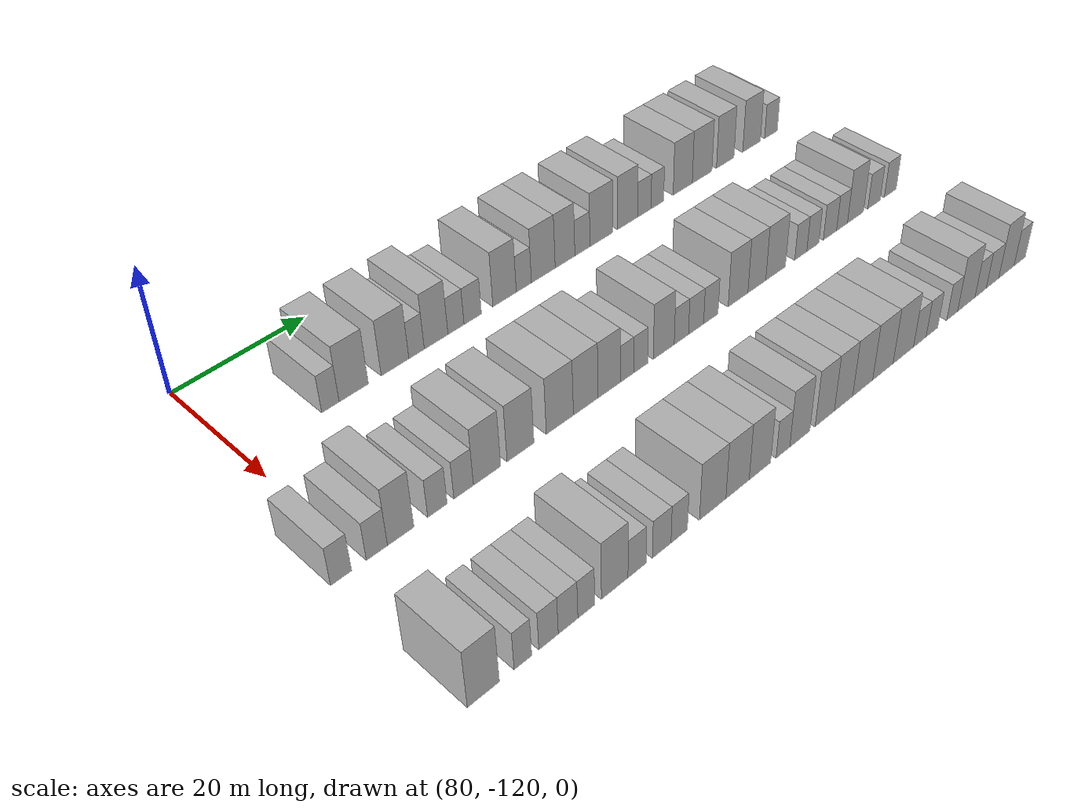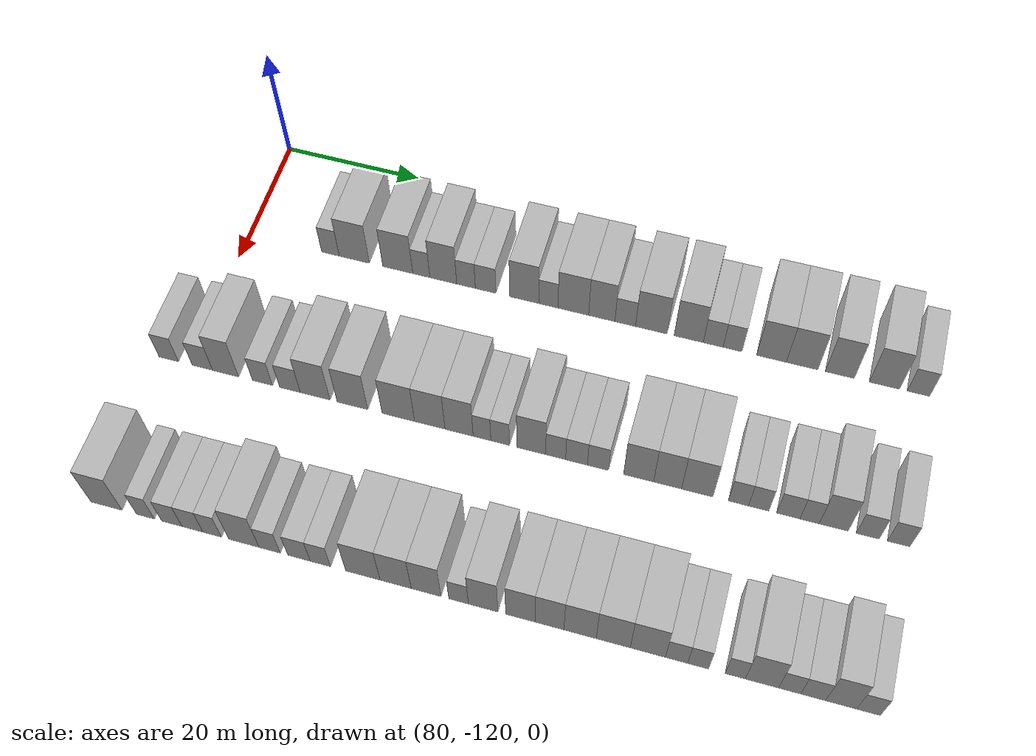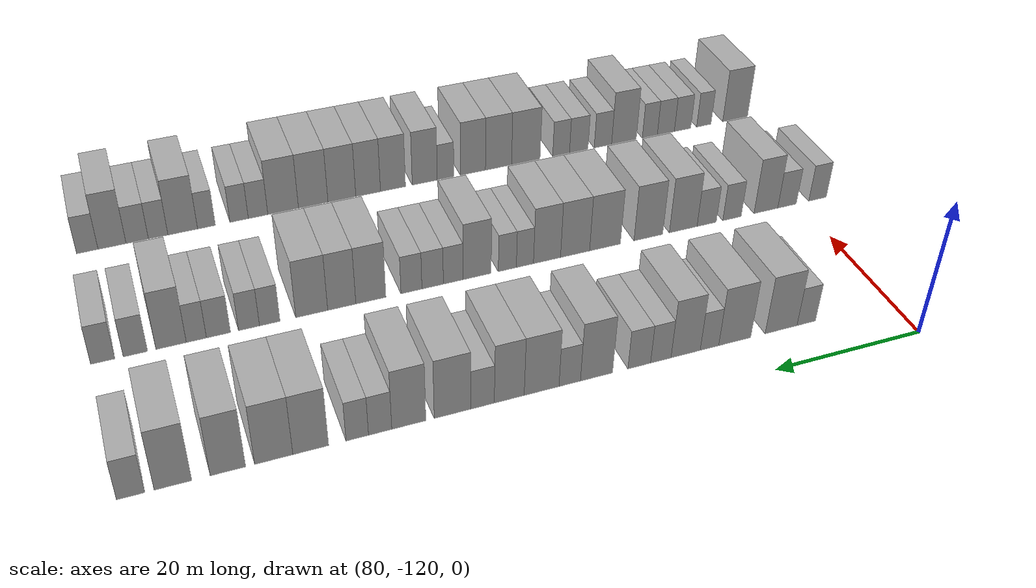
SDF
<sdf version="1.6">
 <world name="default">
  <model name="building_634">
   <static>1</static>
   <pose>91.0000 -107.7955 0 0.000000 0.000000 0.000000</pose>
   <link name="link">
    <pose>0 0 3.00 0 0 0</pose>
    <collision name="collision"><geometry><box><size>10.0000 2.6224 6.0000</size></box></geometry></collision>
    <visual name="visual">
     <cast_shadows>0</cast_shadows>
     <geometry><box><size>10.0000 2.6224 6.0000</size></box></geometry>
     <material>
      <script>
       <uri>model://HANNAS_wall/materials/scripts</uri>
       <uri>model://HANNAS_wall/materials/textures</uri>
       <name>vrc/HANNAS_wall</name>
      </script>
     </material>
    </visual>
   </link>
  </model>
  <model name="building_635">
   <static>1</static>
   <pose>91.0000 -104.2464 0 0.000000 0.000000 0.000000</pose>
   <link name="link">
    <pose>0 0 4.50 0 0 0</pose>
    <collision name="collision"><geometry><box><size>10.0000 4.4760 9.0000</size></box></geometry></collision>
    <visual name="visual">
     <cast_shadows>0</cast_shadows>
     <geometry><box><size>10.0000 4.4760 9.0000</size></box></geometry>
     <material>
      <script>
       <uri>model://HANNAS_wall/materials/scripts</uri>
       <uri>model://HANNAS_wall/materials/textures</uri>
       <name>vrc/HANNAS_wall</name>
      </script>
     </material>
    </visual>
   </link>
  </model>
  <model name="building_636">
   <static>1</static>
   <pose>91.0000 -97.8032 0 0.000000 0.000000 0.000000</pose>
   <link name="link">
    <pose>0 0 4.50 0 0 0</pose>
    <collision name="collision"><geometry><box><size>10.0000 4.4105 9.0000</size></box></geometry></collision>
    <visual name="visual">
     <cast_shadows>0</cast_shadows>
     <geometry><box><size>10.0000 4.4105 9.0000</size></box></geometry>
     <material>
      <script>
       <uri>model://HANNAS_wall/materials/scripts</uri>
       <uri>model://HANNAS_wall/materials/textures</uri>
       <name>vrc/HANNAS_wall</name>
      </script>
     </material>
    </visual>
   </link>
  </model>
  <model name="building_637">
   <static>1</static>
   <pose>91.0000 -94.3453 0 0.000000 0.000000 0.000000</pose>
   <link name="link">
    <pose>0 0 3.00 0 0 0</pose>
    <collision name="collision"><geometry><box><size>10.0000 2.5053 6.0000</size></box></geometry></collision>
    <visual name="visual">
     <cast_shadows>0</cast_shadows>
     <geometry><box><size>10.0000 2.5053 6.0000</size></box></geometry>
     <material>
      <script>
       <uri>model://HANNAS_wall/materials/scripts</uri>
       <uri>model://HANNAS_wall/materials/textures</uri>
       <name>vrc/HANNAS_wall</name>
      </script>
     </material>
    </visual>
   </link>
  </model>
  <model name="building_638">
   <static>1</static>
   <pose>91.0000 -91.1298 0 0.000000 0.000000 0.000000</pose>
   <link name="link">
    <pose>0 0 4.50 0 0 0</pose>
    <collision name="collision"><geometry><box><size>10.0000 3.9256 9.0000</size></box></geometry></collision>
    <visual name="visual">
     <cast_shadows>0</cast_shadows>
     <geometry><box><size>10.0000 3.9256 9.0000</size></box></geometry>
     <material>
      <script>
       <uri>model://HANNAS_wall/materials/scripts</uri>
       <uri>model://HANNAS_wall/materials/textures</uri>
       <name>vrc/HANNAS_wall</name>
      </script>
     </material>
    </visual>
   </link>
  </model>
  <model name="building_639">
   <static>1</static>
   <pose>91.0000 -87.8131 0 0.000000 0.000000 0.000000</pose>
   <link name="link">
    <pose>0 0 3.00 0 0 0</pose>
    <collision name="collision"><geometry><box><size>10.0000 2.7079 6.0000</size></box></geometry></collision>
    <visual name="visual">
     <cast_shadows>0</cast_shadows>
     <geometry><box><size>10.0000 2.7079 6.0000</size></box></geometry>
     <material>
      <script>
       <uri>model://HANNAS_wall/materials/scripts</uri>
       <uri>model://HANNAS_wall/materials/textures</uri>
       <name>vrc/HANNAS_wall</name>
      </script>
     </material>
    </visual>
   </link>
  </model>
  <model name="building_640">
   <static>1</static>
   <pose>91.0000 -84.9691 0 0.000000 0.000000 0.000000</pose>
   <link name="link">
    <pose>0 0 3.00 0 0 0</pose>
    <collision name="collision"><geometry><box><size>10.0000 2.9801 6.0000</size></box></geometry></collision>
    <visual name="visual">
     <cast_shadows>0</cast_shadows>
     <geometry><box><size>10.0000 2.9801 6.0000</size></box></geometry>
     <material>
      <script>
       <uri>model://HANNAS_wall/materials/scripts</uri>
       <uri>model://HANNAS_wall/materials/textures</uri>
       <name>vrc/HANNAS_wall</name>
      </script>
     </material>
    </visual>
   </link>
  </model>
  <model name="building_641">
   <static>1</static>
   <pose>91.0000 -79.4060 0 0.000000 0.000000 0.000000</pose>
   <link name="link">
    <pose>0 0 4.50 0 0 0</pose>
    <collision name="collision"><geometry><box><size>10.0000 4.1459 9.0000</size></box></geometry></collision>
    <visual name="visual">
     <cast_shadows>0</cast_shadows>
     <geometry><box><size>10.0000 4.1459 9.0000</size></box></geometry>
     <material>
      <script>
       <uri>model://HANNAS_wall/materials/scripts</uri>
       <uri>model://HANNAS_wall/materials/textures</uri>
       <name>vrc/HANNAS_wall</name>
      </script>
     </material>
    </visual>
   </link>
  </model>
  <model name="building_642">
   <static>1</static>
   <pose>91.0000 -75.9673 0 0.000000 0.000000 0.000000</pose>
   <link name="link">
    <pose>0 0 3.00 0 0 0</pose>
    <collision name="collision"><geometry><box><size>10.0000 2.7315 6.0000</size></box></geometry></collision>
    <visual name="visual">
     <cast_shadows>0</cast_shadows>
     <geometry><box><size>10.0000 2.7315 6.0000</size></box></geometry>
     <material>
      <script>
       <uri>model://HANNAS_wall/materials/scripts</uri>
       <uri>model://HANNAS_wall/materials/textures</uri>
       <name>vrc/HANNAS_wall</name>
      </script>
     </material>
    </visual>
   </link>
  </model>
  <model name="building_643">
   <static>1</static>
   <pose>91.0000 -72.4109 0 0.000000 0.000000 0.000000</pose>
   <link name="link">
    <pose>0 0 4.50 0 0 0</pose>
    <collision name="collision"><geometry><box><size>10.0000 4.3813 9.0000</size></box></geometry></collision>
    <visual name="visual">
     <cast_shadows>0</cast_shadows>
     <geometry><box><size>10.0000 4.3813 9.0000</size></box></geometry>
     <material>
      <script>
       <uri>model://HANNAS_wall/materials/scripts</uri>
       <uri>model://HANNAS_wall/materials/textures</uri>
       <name>vrc/HANNAS_wall</name>
      </script>
     </material>
    </visual>
   </link>
  </model>
  <model name="building_644">
   <static>1</static>
   <pose>91.0000 -68.3657 0 0.000000 0.000000 0.000000</pose>
   <link name="link">
    <pose>0 0 4.50 0 0 0</pose>
    <collision name="collision"><geometry><box><size>10.0000 3.7092 9.0000</size></box></geometry></collision>
    <visual name="visual">
     <cast_shadows>0</cast_shadows>
     <geometry><box><size>10.0000 3.7092 9.0000</size></box></geometry>
     <material>
      <script>
       <uri>model://HANNAS_wall/materials/scripts</uri>
       <uri>model://HANNAS_wall/materials/textures</uri>
       <name>vrc/HANNAS_wall</name>
      </script>
     </material>
    </visual>
   </link>
  </model>
  <model name="building_645">
   <static>1</static>
   <pose>91.0000 -65.0615 0 0.000000 0.000000 0.000000</pose>
   <link name="link">
    <pose>0 0 3.00 0 0 0</pose>
    <collision name="collision"><geometry><box><size>10.0000 2.8991 6.0000</size></box></geometry></collision>
    <visual name="visual">
     <cast_shadows>0</cast_shadows>
     <geometry><box><size>10.0000 2.8991 6.0000</size></box></geometry>
     <material>
      <script>
       <uri>model://HANNAS_wall/materials/scripts</uri>
       <uri>model://HANNAS_wall/materials/textures</uri>
       <name>vrc/HANNAS_wall</name>
      </script>
     </material>
    </visual>
   </link>
  </model>
  <model name="building_646">
   <static>1</static>
   <pose>91.0000 -61.4081 0 0.000000 0.000000 0.000000</pose>
   <link name="link">
    <pose>0 0 4.50 0 0 0</pose>
    <collision name="collision"><geometry><box><size>10.0000 4.4078 9.0000</size></box></geometry></collision>
    <visual name="visual">
     <cast_shadows>0</cast_shadows>
     <geometry><box><size>10.0000 4.4078 9.0000</size></box></geometry>
     <material>
      <script>
       <uri>model://HANNAS_wall/materials/scripts</uri>
       <uri>model://HANNAS_wall/materials/textures</uri>
       <name>vrc/HANNAS_wall</name>
      </script>
     </material>
    </visual>
   </link>
  </model>
  <model name="building_647">
   <static>1</static>
   <pose>91.0000 -56.1828 0 0.000000 0.000000 0.000000</pose>
   <link name="link">
    <pose>0 0 4.50 0 0 0</pose>
    <collision name="collision"><geometry><box><size>10.0000 4.0427 9.0000</size></box></geometry></collision>
    <visual name="visual">
     <cast_shadows>0</cast_shadows>
     <geometry><box><size>10.0000 4.0427 9.0000</size></box></geometry>
     <material>
      <script>
       <uri>model://HANNAS_wall/materials/scripts</uri>
       <uri>model://HANNAS_wall/materials/textures</uri>
       <name>vrc/HANNAS_wall</name>
      </script>
     </material>
    </visual>
   </link>
  </model>
  <model name="building_648">
   <static>1</static>
   <pose>91.0000 -52.7962 0 0.000000 0.000000 0.000000</pose>
   <link name="link">
    <pose>0 0 3.00 0 0 0</pose>
    <collision name="collision"><geometry><box><size>10.0000 2.7305 6.0000</size></box></geometry></collision>
    <visual name="visual">
     <cast_shadows>0</cast_shadows>
     <geometry><box><size>10.0000 2.7305 6.0000</size></box></geometry>
     <material>
      <script>
       <uri>model://HANNAS_wall/materials/scripts</uri>
       <uri>model://HANNAS_wall/materials/textures</uri>
       <name>vrc/HANNAS_wall</name>
      </script>
     </material>
    </visual>
   </link>
  </model>
  <model name="building_649">
   <static>1</static>
   <pose>91.0000 -50.1236 0 0.000000 0.000000 0.000000</pose>
   <link name="link">
    <pose>0 0 3.00 0 0 0</pose>
    <collision name="collision"><geometry><box><size>10.0000 2.6149 6.0000</size></box></geometry></collision>
    <visual name="visual">
     <cast_shadows>0</cast_shadows>
     <geometry><box><size>10.0000 2.6149 6.0000</size></box></geometry>
     <material>
      <script>
       <uri>model://HANNAS_wall/materials/scripts</uri>
       <uri>model://HANNAS_wall/materials/textures</uri>
       <name>vrc/HANNAS_wall</name>
      </script>
     </material>
    </visual>
   </link>
  </model>
  <model name="building_650">
   <static>1</static>
   <pose>91.0000 -44.7787 0 0.000000 0.000000 0.000000</pose>
   <link name="link">
    <pose>0 0 4.50 0 0 0</pose>
    <collision name="collision"><geometry><box><size>10.0000 4.0748 9.0000</size></box></geometry></collision>
    <visual name="visual">
     <cast_shadows>0</cast_shadows>
     <geometry><box><size>10.0000 4.0748 9.0000</size></box></geometry>
     <material>
      <script>
       <uri>model://HANNAS_wall/materials/scripts</uri>
       <uri>model://HANNAS_wall/materials/textures</uri>
       <name>vrc/HANNAS_wall</name>
      </script>
     </material>
    </visual>
   </link>
  </model>
  <model name="building_651">
   <static>1</static>
   <pose>91.0000 -40.5996 0 0.000000 0.000000 0.000000</pose>
   <link name="link">
    <pose>0 0 4.50 0 0 0</pose>
    <collision name="collision"><geometry><box><size>10.0000 4.2834 9.0000</size></box></geometry></collision>
    <visual name="visual">
     <cast_shadows>0</cast_shadows>
     <geometry><box><size>10.0000 4.2834 9.0000</size></box></geometry>
     <material>
      <script>
       <uri>model://HANNAS_wall/materials/scripts</uri>
       <uri>model://HANNAS_wall/materials/textures</uri>
       <name>vrc/HANNAS_wall</name>
      </script>
     </material>
    </visual>
   </link>
  </model>
  <model name="building_652">
   <static>1</static>
   <pose>91.0000 -35.5072 0 0.000000 0.000000 0.000000</pose>
   <link name="link">
    <pose>0 0 4.50 0 0 0</pose>
    <collision name="collision"><geometry><box><size>10.0000 3.9012 9.0000</size></box></geometry></collision>
    <visual name="visual">
     <cast_shadows>0</cast_shadows>
     <geometry><box><size>10.0000 3.9012 9.0000</size></box></geometry>
     <material>
      <script>
       <uri>model://HANNAS_wall/materials/scripts</uri>
       <uri>model://HANNAS_wall/materials/textures</uri>
       <name>vrc/HANNAS_wall</name>
      </script>
     </material>
    </visual>
   </link>
  </model>
  <model name="building_653">
   <static>1</static>
   <pose>91.0000 -29.5330 0 0.000000 0.000000 0.000000</pose>
   <link name="link">
    <pose>0 0 4.50 0 0 0</pose>
    <collision name="collision"><geometry><box><size>10.0000 4.0472 9.0000</size></box></geometry></collision>
    <visual name="visual">
     <cast_shadows>0</cast_shadows>
     <geometry><box><size>10.0000 4.0472 9.0000</size></box></geometry>
     <material>
      <script>
       <uri>model://HANNAS_wall/materials/scripts</uri>
       <uri>model://HANNAS_wall/materials/textures</uri>
       <name>vrc/HANNAS_wall</name>
      </script>
     </material>
    </visual>
   </link>
  </model>
  <model name="building_654">
   <static>1</static>
   <pose>91.0000 -25.0116 0 0.000000 0.000000 0.000000</pose>
   <link name="link">
    <pose>0 0 3.00 0 0 0</pose>
    <collision name="collision"><geometry><box><size>10.0000 2.9956 6.0000</size></box></geometry></collision>
    <visual name="visual">
     <cast_shadows>0</cast_shadows>
     <geometry><box><size>10.0000 2.9956 6.0000</size></box></geometry>
     <material>
      <script>
       <uri>model://HANNAS_wall/materials/scripts</uri>
       <uri>model://HANNAS_wall/materials/textures</uri>
       <name>vrc/HANNAS_wall</name>
      </script>
     </material>
    </visual>
   </link>
  </model>
  <model name="building_808">
   <static>1</static>
   <pose>113.0000 -122.9401 0 0.000000 0.000000 0.000000</pose>
   <link name="link">
    <pose>0 0 3.00 0 0 0</pose>
    <collision name="collision"><geometry><box><size>10.0000 2.8211 6.0000</size></box></geometry></collision>
    <visual name="visual">
     <cast_shadows>0</cast_shadows>
     <geometry><box><size>10.0000 2.8211 6.0000</size></box></geometry>
     <material>
      <script>
       <uri>model://HANNAS_wall/materials/scripts</uri>
       <uri>model://HANNAS_wall/materials/textures</uri>
       <name>vrc/HANNAS_wall</name>
      </script>
     </material>
    </visual>
   </link>
  </model>
  <model name="building_809">
   <static>1</static>
   <pose>113.0000 -118.0646 0 0.000000 0.000000 0.000000</pose>
   <link name="link">
    <pose>0 0 3.00 0 0 0</pose>
    <collision name="collision"><geometry><box><size>10.0000 2.9298 6.0000</size></box></geometry></collision>
    <visual name="visual">
     <cast_shadows>0</cast_shadows>
     <geometry><box><size>10.0000 2.9298 6.0000</size></box></geometry>
     <material>
      <script>
       <uri>model://HANNAS_wall/materials/scripts</uri>
       <uri>model://HANNAS_wall/materials/textures</uri>
       <name>vrc/HANNAS_wall</name>
      </script>
     </material>
    </visual>
   </link>
  </model>
  <model name="building_810">
   <static>1</static>
   <pose>113.0000 -114.7333 0 0.000000 0.000000 0.000000</pose>
   <link name="link">
    <pose>0 0 4.50 0 0 0</pose>
    <collision name="collision"><geometry><box><size>10.0000 3.7327 9.0000</size></box></geometry></collision>
    <visual name="visual">
     <cast_shadows>0</cast_shadows>
     <geometry><box><size>10.0000 3.7327 9.0000</size></box></geometry>
     <material>
      <script>
       <uri>model://HANNAS_wall/materials/scripts</uri>
       <uri>model://HANNAS_wall/materials/textures</uri>
       <name>vrc/HANNAS_wall</name>
      </script>
     </material>
    </visual>
   </link>
  </model>
  <model name="building_811">
   <static>1</static>
   <pose>113.0000 -109.4452 0 0.000000 0.000000 0.000000</pose>
   <link name="link">
    <pose>0 0 3.00 0 0 0</pose>
    <collision name="collision"><geometry><box><size>10.0000 2.8435 6.0000</size></box></geometry></collision>
    <visual name="visual">
     <cast_shadows>0</cast_shadows>
     <geometry><box><size>10.0000 2.8435 6.0000</size></box></geometry>
     <material>
      <script>
       <uri>model://HANNAS_wall/materials/scripts</uri>
       <uri>model://HANNAS_wall/materials/textures</uri>
       <name>vrc/HANNAS_wall</name>
      </script>
     </material>
    </visual>
   </link>
  </model>
  <model name="building_812">
   <static>1</static>
   <pose>113.0000 -105.5552 0 0.000000 0.000000 0.000000</pose>
   <link name="link">
    <pose>0 0 3.00 0 0 0</pose>
    <collision name="collision"><geometry><box><size>10.0000 2.9364 6.0000</size></box></geometry></collision>
    <visual name="visual">
     <cast_shadows>0</cast_shadows>
     <geometry><box><size>10.0000 2.9364 6.0000</size></box></geometry>
     <material>
      <script>
       <uri>model://HANNAS_wall/materials/scripts</uri>
       <uri>model://HANNAS_wall/materials/textures</uri>
       <name>vrc/HANNAS_wall</name>
      </script>
     </material>
    </visual>
   </link>
  </model>
  <model name="building_813">
   <static>1</static>
   <pose>113.0000 -101.9920 0 0.000000 0.000000 0.000000</pose>
   <link name="link">
    <pose>0 0 4.50 0 0 0</pose>
    <collision name="collision"><geometry><box><size>10.0000 4.1901 9.0000</size></box></geometry></collision>
    <visual name="visual">
     <cast_shadows>0</cast_shadows>
     <geometry><box><size>10.0000 4.1901 9.0000</size></box></geometry>
     <material>
      <script>
       <uri>model://HANNAS_wall/materials/scripts</uri>
       <uri>model://HANNAS_wall/materials/textures</uri>
       <name>vrc/HANNAS_wall</name>
      </script>
     </material>
    </visual>
   </link>
  </model>
  <model name="building_814">
   <static>1</static>
   <pose>113.0000 -96.7611 0 0.000000 0.000000 0.000000</pose>
   <link name="link">
    <pose>0 0 4.50 0 0 0</pose>
    <collision name="collision"><geometry><box><size>10.0000 4.2716 9.0000</size></box></geometry></collision>
    <visual name="visual">
     <cast_shadows>0</cast_shadows>
     <geometry><box><size>10.0000 4.2716 9.0000</size></box></geometry>
     <material>
      <script>
       <uri>model://HANNAS_wall/materials/scripts</uri>
       <uri>model://HANNAS_wall/materials/textures</uri>
       <name>vrc/HANNAS_wall</name>
      </script>
     </material>
    </visual>
   </link>
  </model>
  <model name="building_815">
   <static>1</static>
   <pose>113.0000 -90.3796 0 0.000000 0.000000 0.000000</pose>
   <link name="link">
    <pose>0 0 4.50 0 0 0</pose>
    <collision name="collision"><geometry><box><size>10.0000 4.4914 9.0000</size></box></geometry></collision>
    <visual name="visual">
     <cast_shadows>0</cast_shadows>
     <geometry><box><size>10.0000 4.4914 9.0000</size></box></geometry>
     <material>
      <script>
       <uri>model://HANNAS_wall/materials/scripts</uri>
       <uri>model://HANNAS_wall/materials/textures</uri>
       <name>vrc/HANNAS_wall</name>
      </script>
     </material>
    </visual>
   </link>
  </model>
  <model name="building_816">
   <static>1</static>
   <pose>113.0000 -86.0429 0 0.000000 0.000000 0.000000</pose>
   <link name="link">
    <pose>0 0 4.50 0 0 0</pose>
    <collision name="collision"><geometry><box><size>10.0000 4.1819 9.0000</size></box></geometry></collision>
    <visual name="visual">
     <cast_shadows>0</cast_shadows>
     <geometry><box><size>10.0000 4.1819 9.0000</size></box></geometry>
     <material>
      <script>
       <uri>model://HANNAS_wall/materials/scripts</uri>
       <uri>model://HANNAS_wall/materials/textures</uri>
       <name>vrc/HANNAS_wall</name>
      </script>
     </material>
    </visual>
   </link>
  </model>
  <model name="building_817">
   <static>1</static>
   <pose>113.0000 -82.0268 0 0.000000 0.000000 0.000000</pose>
   <link name="link">
    <pose>0 0 4.50 0 0 0</pose>
    <collision name="collision"><geometry><box><size>10.0000 3.8504 9.0000</size></box></geometry></collision>
    <visual name="visual">
     <cast_shadows>0</cast_shadows>
     <geometry><box><size>10.0000 3.8504 9.0000</size></box></geometry>
     <material>
      <script>
       <uri>model://HANNAS_wall/materials/scripts</uri>
       <uri>model://HANNAS_wall/materials/textures</uri>
       <name>vrc/HANNAS_wall</name>
      </script>
     </material>
    </visual>
   </link>
  </model>
  <model name="building_818">
   <static>1</static>
   <pose>113.0000 -78.9003 0 0.000000 0.000000 0.000000</pose>
   <link name="link">
    <pose>0 0 3.00 0 0 0</pose>
    <collision name="collision"><geometry><box><size>10.0000 2.4027 6.0000</size></box></geometry></collision>
    <visual name="visual">
     <cast_shadows>0</cast_shadows>
     <geometry><box><size>10.0000 2.4027 6.0000</size></box></geometry>
     <material>
      <script>
       <uri>model://HANNAS_wall/materials/scripts</uri>
       <uri>model://HANNAS_wall/materials/textures</uri>
       <name>vrc/HANNAS_wall</name>
      </script>
     </material>
    </visual>
   </link>
  </model>
  <model name="building_819">
   <static>1</static>
   <pose>113.0000 -76.4358 0 0.000000 0.000000 0.000000</pose>
   <link name="link">
    <pose>0 0 3.00 0 0 0</pose>
    <collision name="collision"><geometry><box><size>10.0000 2.5262 6.0000</size></box></geometry></collision>
    <visual name="visual">
     <cast_shadows>0</cast_shadows>
     <geometry><box><size>10.0000 2.5262 6.0000</size></box></geometry>
     <material>
      <script>
       <uri>model://HANNAS_wall/materials/scripts</uri>
       <uri>model://HANNAS_wall/materials/textures</uri>
       <name>vrc/HANNAS_wall</name>
      </script>
     </material>
    </visual>
   </link>
  </model>
  <model name="building_820">
   <static>1</static>
   <pose>113.0000 -72.2427 0 0.000000 0.000000 0.000000</pose>
   <link name="link">
    <pose>0 0 4.50 0 0 0</pose>
    <collision name="collision"><geometry><box><size>10.0000 3.8600 9.0000</size></box></geometry></collision>
    <visual name="visual">
     <cast_shadows>0</cast_shadows>
     <geometry><box><size>10.0000 3.8600 9.0000</size></box></geometry>
     <material>
      <script>
       <uri>model://HANNAS_wall/materials/scripts</uri>
       <uri>model://HANNAS_wall/materials/textures</uri>
       <name>vrc/HANNAS_wall</name>
      </script>
     </material>
    </visual>
   </link>
  </model>
  <model name="building_821">
   <static>1</static>
   <pose>113.0000 -68.9713 0 0.000000 0.000000 0.000000</pose>
   <link name="link">
    <pose>0 0 3.00 0 0 0</pose>
    <collision name="collision"><geometry><box><size>10.0000 2.6829 6.0000</size></box></geometry></collision>
    <visual name="visual">
     <cast_shadows>0</cast_shadows>
     <geometry><box><size>10.0000 2.6829 6.0000</size></box></geometry>
     <material>
      <script>
       <uri>model://HANNAS_wall/materials/scripts</uri>
       <uri>model://HANNAS_wall/materials/textures</uri>
       <name>vrc/HANNAS_wall</name>
      </script>
     </material>
    </visual>
   </link>
  </model>
  <model name="building_822">
   <static>1</static>
   <pose>113.0000 -66.1815 0 0.000000 0.000000 0.000000</pose>
   <link name="link">
    <pose>0 0 3.00 0 0 0</pose>
    <collision name="collision"><geometry><box><size>10.0000 2.8966 6.0000</size></box></geometry></collision>
    <visual name="visual">
     <cast_shadows>0</cast_shadows>
     <geometry><box><size>10.0000 2.8966 6.0000</size></box></geometry>
     <material>
      <script>
       <uri>model://HANNAS_wall/materials/scripts</uri>
       <uri>model://HANNAS_wall/materials/textures</uri>
       <name>vrc/HANNAS_wall</name>
      </script>
     </material>
    </visual>
   </link>
  </model>
  <model name="building_823">
   <static>1</static>
   <pose>113.0000 -63.3298 0 0.000000 0.000000 0.000000</pose>
   <link name="link">
    <pose>0 0 3.00 0 0 0</pose>
    <collision name="collision"><geometry><box><size>10.0000 2.8069 6.0000</size></box></geometry></collision>
    <visual name="visual">
     <cast_shadows>0</cast_shadows>
     <geometry><box><size>10.0000 2.8069 6.0000</size></box></geometry>
     <material>
      <script>
       <uri>model://HANNAS_wall/materials/scripts</uri>
       <uri>model://HANNAS_wall/materials/textures</uri>
       <name>vrc/HANNAS_wall</name>
      </script>
     </material>
    </visual>
   </link>
  </model>
  <model name="building_824">
   <static>1</static>
   <pose>113.0000 -57.9511 0 0.000000 0.000000 0.000000</pose>
   <link name="link">
    <pose>0 0 4.50 0 0 0</pose>
    <collision name="collision"><geometry><box><size>10.0000 3.9504 9.0000</size></box></geometry></collision>
    <visual name="visual">
     <cast_shadows>0</cast_shadows>
     <geometry><box><size>10.0000 3.9504 9.0000</size></box></geometry>
     <material>
      <script>
       <uri>model://HANNAS_wall/materials/scripts</uri>
       <uri>model://HANNAS_wall/materials/textures</uri>
       <name>vrc/HANNAS_wall</name>
      </script>
     </material>
    </visual>
   </link>
  </model>
  <model name="building_825">
   <static>1</static>
   <pose>113.0000 -54.1474 0 0.000000 0.000000 0.000000</pose>
   <link name="link">
    <pose>0 0 4.50 0 0 0</pose>
    <collision name="collision"><geometry><box><size>10.0000 3.6571 9.0000</size></box></geometry></collision>
    <visual name="visual">
     <cast_shadows>0</cast_shadows>
     <geometry><box><size>10.0000 3.6571 9.0000</size></box></geometry>
     <material>
      <script>
       <uri>model://HANNAS_wall/materials/scripts</uri>
       <uri>model://HANNAS_wall/materials/textures</uri>
       <name>vrc/HANNAS_wall</name>
      </script>
     </material>
    </visual>
   </link>
  </model>
  <model name="building_826">
   <static>1</static>
   <pose>113.0000 -50.2691 0 0.000000 0.000000 0.000000</pose>
   <link name="link">
    <pose>0 0 4.50 0 0 0</pose>
    <collision name="collision"><geometry><box><size>10.0000 4.0996 9.0000</size></box></geometry></collision>
    <visual name="visual">
     <cast_shadows>0</cast_shadows>
     <geometry><box><size>10.0000 4.0996 9.0000</size></box></geometry>
     <material>
      <script>
       <uri>model://HANNAS_wall/materials/scripts</uri>
       <uri>model://HANNAS_wall/materials/textures</uri>
       <name>vrc/HANNAS_wall</name>
      </script>
     </material>
    </visual>
   </link>
  </model>
  <model name="building_827">
   <static>1</static>
   <pose>113.0000 -44.9252 0 0.000000 0.000000 0.000000</pose>
   <link name="link">
    <pose>0 0 3.00 0 0 0</pose>
    <collision name="collision"><geometry><box><size>10.0000 2.5882 6.0000</size></box></geometry></collision>
    <visual name="visual">
     <cast_shadows>0</cast_shadows>
     <geometry><box><size>10.0000 2.5882 6.0000</size></box></geometry>
     <material>
      <script>
       <uri>model://HANNAS_wall/materials/scripts</uri>
       <uri>model://HANNAS_wall/materials/textures</uri>
       <name>vrc/HANNAS_wall</name>
      </script>
     </material>
    </visual>
   </link>
  </model>
  <model name="building_828">
   <static>1</static>
   <pose>113.0000 -42.3216 0 0.000000 0.000000 0.000000</pose>
   <link name="link">
    <pose>0 0 3.00 0 0 0</pose>
    <collision name="collision"><geometry><box><size>10.0000 2.6190 6.0000</size></box></geometry></collision>
    <visual name="visual">
     <cast_shadows>0</cast_shadows>
     <geometry><box><size>10.0000 2.6190 6.0000</size></box></geometry>
     <material>
      <script>
       <uri>model://HANNAS_wall/materials/scripts</uri>
       <uri>model://HANNAS_wall/materials/textures</uri>
       <name>vrc/HANNAS_wall</name>
      </script>
     </material>
    </visual>
   </link>
  </model>
  <model name="building_829">
   <static>1</static>
   <pose>113.0000 -38.5292 0 0.000000 0.000000 0.000000</pose>
   <link name="link">
    <pose>0 0 3.00 0 0 0</pose>
    <collision name="collision"><geometry><box><size>10.0000 2.9658 6.0000</size></box></geometry></collision>
    <visual name="visual">
     <cast_shadows>0</cast_shadows>
     <geometry><box><size>10.0000 2.9658 6.0000</size></box></geometry>
     <material>
      <script>
       <uri>model://HANNAS_wall/materials/scripts</uri>
       <uri>model://HANNAS_wall/materials/textures</uri>
       <name>vrc/HANNAS_wall</name>
      </script>
     </material>
    </visual>
   </link>
  </model>
  <model name="building_830">
   <static>1</static>
   <pose>113.0000 -35.8135 0 0.000000 0.000000 0.000000</pose>
   <link name="link">
    <pose>0 0 3.00 0 0 0</pose>
    <collision name="collision"><geometry><box><size>10.0000 2.4656 6.0000</size></box></geometry></collision>
    <visual name="visual">
     <cast_shadows>0</cast_shadows>
     <geometry><box><size>10.0000 2.4656 6.0000</size></box></geometry>
     <material>
      <script>
       <uri>model://HANNAS_wall/materials/scripts</uri>
       <uri>model://HANNAS_wall/materials/textures</uri>
       <name>vrc/HANNAS_wall</name>
      </script>
     </material>
    </visual>
   </link>
  </model>
  <model name="building_831">
   <static>1</static>
   <pose>113.0000 -32.7439 0 0.000000 0.000000 0.000000</pose>
   <link name="link">
    <pose>0 0 4.50 0 0 0</pose>
    <collision name="collision"><geometry><box><size>10.0000 3.6736 9.0000</size></box></geometry></collision>
    <visual name="visual">
     <cast_shadows>0</cast_shadows>
     <geometry><box><size>10.0000 3.6736 9.0000</size></box></geometry>
     <material>
      <script>
       <uri>model://HANNAS_wall/materials/scripts</uri>
       <uri>model://HANNAS_wall/materials/textures</uri>
       <name>vrc/HANNAS_wall</name>
      </script>
     </material>
    </visual>
   </link>
  </model>
  <model name="building_832">
   <static>1</static>
   <pose>113.0000 -28.4534 0 0.000000 0.000000 0.000000</pose>
   <link name="link">
    <pose>0 0 3.00 0 0 0</pose>
    <collision name="collision"><geometry><box><size>10.0000 2.9074 6.0000</size></box></geometry></collision>
    <visual name="visual">
     <cast_shadows>0</cast_shadows>
     <geometry><box><size>10.0000 2.9074 6.0000</size></box></geometry>
     <material>
      <script>
       <uri>model://HANNAS_wall/materials/scripts</uri>
       <uri>model://HANNAS_wall/materials/textures</uri>
       <name>vrc/HANNAS_wall</name>
      </script>
     </material>
    </visual>
   </link>
  </model>
  <model name="building_833">
   <static>1</static>
   <pose>113.0000 -24.5790 0 0.000000 0.000000 0.000000</pose>
   <link name="link">
    <pose>0 0 3.00 0 0 0</pose>
    <collision name="collision"><geometry><box><size>10.0000 2.8413 6.0000</size></box></geometry></collision>
    <visual name="visual">
     <cast_shadows>0</cast_shadows>
     <geometry><box><size>10.0000 2.8413 6.0000</size></box></geometry>
     <material>
      <script>
       <uri>model://HANNAS_wall/materials/scripts</uri>
       <uri>model://HANNAS_wall/materials/textures</uri>
       <name>vrc/HANNAS_wall</name>
      </script>
     </material>
    </visual>
   </link>
  </model>
  <model name="building_986">
   <static>1</static>
   <pose>135.0000 -122.0020 0 0.000000 0.000000 0.000000</pose>
   <link name="link">
    <pose>0 0 4.50 0 0 0</pose>
    <collision name="collision"><geometry><box><size>10.0000 4.2705 9.0000</size></box></geometry></collision>
    <visual name="visual">
     <cast_shadows>0</cast_shadows>
     <geometry><box><size>10.0000 4.2705 9.0000</size></box></geometry>
     <material>
      <script>
       <uri>model://HANNAS_wall/materials/scripts</uri>
       <uri>model://HANNAS_wall/materials/textures</uri>
       <name>vrc/HANNAS_wall</name>
      </script>
     </material>
    </visual>
   </link>
  </model>
  <model name="building_987">
   <static>1</static>
   <pose>135.0000 -116.6493 0 0.000000 0.000000 0.000000</pose>
   <link name="link">
    <pose>0 0 3.00 0 0 0</pose>
    <collision name="collision"><geometry><box><size>10.0000 2.4349 6.0000</size></box></geometry></collision>
    <visual name="visual">
     <cast_shadows>0</cast_shadows>
     <geometry><box><size>10.0000 2.4349 6.0000</size></box></geometry>
     <material>
      <script>
       <uri>model://HANNAS_wall/materials/scripts</uri>
       <uri>model://HANNAS_wall/materials/textures</uri>
       <name>vrc/HANNAS_wall</name>
      </script>
     </material>
    </visual>
   </link>
  </model>
  <model name="building_988">
   <static>1</static>
   <pose>135.0000 -113.0560 0 0.000000 0.000000 0.000000</pose>
   <link name="link">
    <pose>0 0 3.00 0 0 0</pose>
    <collision name="collision"><geometry><box><size>10.0000 2.7517 6.0000</size></box></geometry></collision>
    <visual name="visual">
     <cast_shadows>0</cast_shadows>
     <geometry><box><size>10.0000 2.7517 6.0000</size></box></geometry>
     <material>
      <script>
       <uri>model://HANNAS_wall/materials/scripts</uri>
       <uri>model://HANNAS_wall/materials/textures</uri>
       <name>vrc/HANNAS_wall</name>
      </script>
     </material>
    </visual>
   </link>
  </model>
  <model name="building_989">
   <static>1</static>
   <pose>135.0000 -110.2607 0 0.000000 0.000000 0.000000</pose>
   <link name="link">
    <pose>0 0 3.00 0 0 0</pose>
    <collision name="collision"><geometry><box><size>10.0000 2.8388 6.0000</size></box></geometry></collision>
    <visual name="visual">
     <cast_shadows>0</cast_shadows>
     <geometry><box><size>10.0000 2.8388 6.0000</size></box></geometry>
     <material>
      <script>
       <uri>model://HANNAS_wall/materials/scripts</uri>
       <uri>model://HANNAS_wall/materials/textures</uri>
       <name>vrc/HANNAS_wall</name>
      </script>
     </material>
    </visual>
   </link>
  </model>
  <model name="building_990">
   <static>1</static>
   <pose>135.0000 -107.5980 0 0.000000 0.000000 0.000000</pose>
   <link name="link">
    <pose>0 0 3.00 0 0 0</pose>
    <collision name="collision"><geometry><box><size>10.0000 2.4867 6.0000</size></box></geometry></collision>
    <visual name="visual">
     <cast_shadows>0</cast_shadows>
     <geometry><box><size>10.0000 2.4867 6.0000</size></box></geometry>
     <material>
      <script>
       <uri>model://HANNAS_wall/materials/scripts</uri>
       <uri>model://HANNAS_wall/materials/textures</uri>
       <name>vrc/HANNAS_wall</name>
      </script>
     </material>
    </visual>
   </link>
  </model>
  <model name="building_991">
   <static>1</static>
   <pose>135.0000 -103.3387 0 0.000000 0.000000 0.000000</pose>
   <link name="link">
    <pose>0 0 4.50 0 0 0</pose>
    <collision name="collision"><geometry><box><size>10.0000 4.0319 9.0000</size></box></geometry></collision>
    <visual name="visual">
     <cast_shadows>0</cast_shadows>
     <geometry><box><size>10.0000 4.0319 9.0000</size></box></geometry>
     <material>
      <script>
       <uri>model://HANNAS_wall/materials/scripts</uri>
       <uri>model://HANNAS_wall/materials/textures</uri>
       <name>vrc/HANNAS_wall</name>
      </script>
     </material>
    </visual>
   </link>
  </model>
  <model name="building_992">
   <static>1</static>
   <pose>135.0000 -99.9125 0 0.000000 0.000000 0.000000</pose>
   <link name="link">
    <pose>0 0 3.00 0 0 0</pose>
    <collision name="collision"><geometry><box><size>10.0000 2.8204 6.0000</size></box></geometry></collision>
    <visual name="visual">
     <cast_shadows>0</cast_shadows>
     <geometry><box><size>10.0000 2.8204 6.0000</size></box></geometry>
     <material>
      <script>
       <uri>model://HANNAS_wall/materials/scripts</uri>
       <uri>model://HANNAS_wall/materials/textures</uri>
       <name>vrc/HANNAS_wall</name>
      </script>
     </material>
    </visual>
   </link>
  </model>
  <model name="building_993">
   <static>1</static>
   <pose>135.0000 -96.0217 0 0.000000 0.000000 0.000000</pose>
   <link name="link">
    <pose>0 0 3.00 0 0 0</pose>
    <collision name="collision"><geometry><box><size>10.0000 2.9612 6.0000</size></box></geometry></collision>
    <visual name="visual">
     <cast_shadows>0</cast_shadows>
     <geometry><box><size>10.0000 2.9612 6.0000</size></box></geometry>
     <material>
      <script>
       <uri>model://HANNAS_wall/materials/scripts</uri>
       <uri>model://HANNAS_wall/materials/textures</uri>
       <name>vrc/HANNAS_wall</name>
      </script>
     </material>
    </visual>
   </link>
  </model>
  <model name="building_994">
   <static>1</static>
   <pose>135.0000 -93.2041 0 0.000000 0.000000 0.000000</pose>
   <link name="link">
    <pose>0 0 3.00 0 0 0</pose>
    <collision name="collision"><geometry><box><size>10.0000 2.6740 6.0000</size></box></geometry></collision>
    <visual name="visual">
     <cast_shadows>0</cast_shadows>
     <geometry><box><size>10.0000 2.6740 6.0000</size></box></geometry>
     <material>
      <script>
       <uri>model://HANNAS_wall/materials/scripts</uri>
       <uri>model://HANNAS_wall/materials/textures</uri>
       <name>vrc/HANNAS_wall</name>
      </script>
     </material>
    </visual>
   </link>
  </model>
  <model name="building_995">
   <static>1</static>
   <pose>135.0000 -87.6341 0 0.000000 0.000000 0.000000</pose>
   <link name="link">
    <pose>0 0 4.50 0 0 0</pose>
    <collision name="collision"><geometry><box><size>10.0000 4.4659 9.0000</size></box></geometry></collision>
    <visual name="visual">
     <cast_shadows>0</cast_shadows>
     <geometry><box><size>10.0000 4.4659 9.0000</size></box></geometry>
     <material>
      <script>
       <uri>model://HANNAS_wall/materials/scripts</uri>
       <uri>model://HANNAS_wall/materials/textures</uri>
       <name>vrc/HANNAS_wall</name>
      </script>
     </material>
    </visual>
   </link>
  </model>
  <model name="building_996">
   <static>1</static>
   <pose>135.0000 -83.3828 0 0.000000 0.000000 0.000000</pose>
   <link name="link">
    <pose>0 0 4.50 0 0 0</pose>
    <collision name="collision"><geometry><box><size>10.0000 4.0367 9.0000</size></box></geometry></collision>
    <visual name="visual">
     <cast_shadows>0</cast_shadows>
     <geometry><box><size>10.0000 4.0367 9.0000</size></box></geometry>
     <material>
      <script>
       <uri>model://HANNAS_wall/materials/scripts</uri>
       <uri>model://HANNAS_wall/materials/textures</uri>
       <name>vrc/HANNAS_wall</name>
      </script>
     </material>
    </visual>
   </link>
  </model>
  <model name="building_997">
   <static>1</static>
   <pose>135.0000 -79.4503 0 0.000000 0.000000 0.000000</pose>
   <link name="link">
    <pose>0 0 4.50 0 0 0</pose>
    <collision name="collision"><geometry><box><size>10.0000 3.8283 9.0000</size></box></geometry></collision>
    <visual name="visual">
     <cast_shadows>0</cast_shadows>
     <geometry><box><size>10.0000 3.8283 9.0000</size></box></geometry>
     <material>
      <script>
       <uri>model://HANNAS_wall/materials/scripts</uri>
       <uri>model://HANNAS_wall/materials/textures</uri>
       <name>vrc/HANNAS_wall</name>
      </script>
     </material>
    </visual>
   </link>
  </model>
  <model name="building_998">
   <static>1</static>
   <pose>135.0000 -75.2879 0 0.000000 0.000000 0.000000</pose>
   <link name="link">
    <pose>0 0 3.00 0 0 0</pose>
    <collision name="collision"><geometry><box><size>10.0000 2.4965 6.0000</size></box></geometry></collision>
    <visual name="visual">
     <cast_shadows>0</cast_shadows>
     <geometry><box><size>10.0000 2.4965 6.0000</size></box></geometry>
     <material>
      <script>
       <uri>model://HANNAS_wall/materials/scripts</uri>
       <uri>model://HANNAS_wall/materials/textures</uri>
       <name>vrc/HANNAS_wall</name>
      </script>
     </material>
    </visual>
   </link>
  </model>
  <model name="building_999">
   <static>1</static>
   <pose>135.0000 -72.1655 0 0.000000 0.000000 0.000000</pose>
   <link name="link">
    <pose>0 0 4.50 0 0 0</pose>
    <collision name="collision"><geometry><box><size>10.0000 3.7482 9.0000</size></box></geometry></collision>
    <visual name="visual">
     <cast_shadows>0</cast_shadows>
     <geometry><box><size>10.0000 3.7482 9.0000</size></box></geometry>
     <material>
      <script>
       <uri>model://HANNAS_wall/materials/scripts</uri>
       <uri>model://HANNAS_wall/materials/textures</uri>
       <name>vrc/HANNAS_wall</name>
      </script>
     </material>
    </visual>
   </link>
  </model>
  <model name="building_1000">
   <static>1</static>
   <pose>135.0000 -67.4443 0 0.000000 0.000000 0.000000</pose>
   <link name="link">
    <pose>0 0 4.50 0 0 0</pose>
    <collision name="collision"><geometry><box><size>10.0000 3.6942 9.0000</size></box></geometry></collision>
    <visual name="visual">
     <cast_shadows>0</cast_shadows>
     <geometry><box><size>10.0000 3.6942 9.0000</size></box></geometry>
     <material>
      <script>
       <uri>model://HANNAS_wall/materials/scripts</uri>
       <uri>model://HANNAS_wall/materials/textures</uri>
       <name>vrc/HANNAS_wall</name>
      </script>
     </material>
    </visual>
   </link>
  </model>
  <model name="building_1001">
   <static>1</static>
   <pose>135.0000 -63.7929 0 0.000000 0.000000 0.000000</pose>
   <link name="link">
    <pose>0 0 4.50 0 0 0</pose>
    <collision name="collision"><geometry><box><size>10.0000 3.6086 9.0000</size></box></geometry></collision>
    <visual name="visual">
     <cast_shadows>0</cast_shadows>
     <geometry><box><size>10.0000 3.6086 9.0000</size></box></geometry>
     <material>
      <script>
       <uri>model://HANNAS_wall/materials/scripts</uri>
       <uri>model://HANNAS_wall/materials/textures</uri>
       <name>vrc/HANNAS_wall</name>
      </script>
     </material>
    </visual>
   </link>
  </model>
  <model name="building_1002">
   <static>1</static>
   <pose>135.0000 -59.9772 0 0.000000 0.000000 0.000000</pose>
   <link name="link">
    <pose>0 0 4.50 0 0 0</pose>
    <collision name="collision"><geometry><box><size>10.0000 4.0229 9.0000</size></box></geometry></collision>
    <visual name="visual">
     <cast_shadows>0</cast_shadows>
     <geometry><box><size>10.0000 4.0229 9.0000</size></box></geometry>
     <material>
      <script>
       <uri>model://HANNAS_wall/materials/scripts</uri>
       <uri>model://HANNAS_wall/materials/textures</uri>
       <name>vrc/HANNAS_wall</name>
      </script>
     </material>
    </visual>
   </link>
  </model>
  <model name="building_1003">
   <static>1</static>
   <pose>135.0000 -55.8595 0 0.000000 0.000000 0.000000</pose>
   <link name="link">
    <pose>0 0 4.50 0 0 0</pose>
    <collision name="collision"><geometry><box><size>10.0000 4.2125 9.0000</size></box></geometry></collision>
    <visual name="visual">
     <cast_shadows>0</cast_shadows>
     <geometry><box><size>10.0000 4.2125 9.0000</size></box></geometry>
     <material>
      <script>
       <uri>model://HANNAS_wall/materials/scripts</uri>
       <uri>model://HANNAS_wall/materials/textures</uri>
       <name>vrc/HANNAS_wall</name>
      </script>
     </material>
    </visual>
   </link>
  </model>
  <model name="building_1004">
   <static>1</static>
   <pose>135.0000 -51.5910 0 0.000000 0.000000 0.000000</pose>
   <link name="link">
    <pose>0 0 4.50 0 0 0</pose>
    <collision name="collision"><geometry><box><size>10.0000 4.3245 9.0000</size></box></geometry></collision>
    <visual name="visual">
     <cast_shadows>0</cast_shadows>
     <geometry><box><size>10.0000 4.3245 9.0000</size></box></geometry>
     <material>
      <script>
       <uri>model://HANNAS_wall/materials/scripts</uri>
       <uri>model://HANNAS_wall/materials/textures</uri>
       <name>vrc/HANNAS_wall</name>
      </script>
     </material>
    </visual>
   </link>
  </model>
  <model name="building_1005">
   <static>1</static>
   <pose>135.0000 -48.0672 0 0.000000 0.000000 0.000000</pose>
   <link name="link">
    <pose>0 0 3.00 0 0 0</pose>
    <collision name="collision"><geometry><box><size>10.0000 2.7232 6.0000</size></box></geometry></collision>
    <visual name="visual">
     <cast_shadows>0</cast_shadows>
     <geometry><box><size>10.0000 2.7232 6.0000</size></box></geometry>
     <material>
      <script>
       <uri>model://HANNAS_wall/materials/scripts</uri>
       <uri>model://HANNAS_wall/materials/textures</uri>
       <name>vrc/HANNAS_wall</name>
      </script>
     </material>
    </visual>
   </link>
  </model>
  <model name="building_1006">
   <static>1</static>
   <pose>135.0000 -45.4322 0 0.000000 0.000000 0.000000</pose>
   <link name="link">
    <pose>0 0 3.00 0 0 0</pose>
    <collision name="collision"><geometry><box><size>10.0000 2.5468 6.0000</size></box></geometry></collision>
    <visual name="visual">
     <cast_shadows>0</cast_shadows>
     <geometry><box><size>10.0000 2.5468 6.0000</size></box></geometry>
     <material>
      <script>
       <uri>model://HANNAS_wall/materials/scripts</uri>
       <uri>model://HANNAS_wall/materials/textures</uri>
       <name>vrc/HANNAS_wall</name>
      </script>
     </material>
    </visual>
   </link>
  </model>
  <model name="building_1007">
   <static>1</static>
   <pose>135.0000 -40.9448 0 0.000000 0.000000 0.000000</pose>
   <link name="link">
    <pose>0 0 3.00 0 0 0</pose>
    <collision name="collision"><geometry><box><size>10.0000 2.4278 6.0000</size></box></geometry></collision>
    <visual name="visual">
     <cast_shadows>0</cast_shadows>
     <geometry><box><size>10.0000 2.4278 6.0000</size></box></geometry>
     <material>
      <script>
       <uri>model://HANNAS_wall/materials/scripts</uri>
       <uri>model://HANNAS_wall/materials/textures</uri>
       <name>vrc/HANNAS_wall</name>
      </script>
     </material>
    </visual>
   </link>
  </model>
  <model name="building_1008">
   <static>1</static>
   <pose>135.0000 -37.7258 0 0.000000 0.000000 0.000000</pose>
   <link name="link">
    <pose>0 0 4.50 0 0 0</pose>
    <collision name="collision"><geometry><box><size>10.0000 4.0103 9.0000</size></box></geometry></collision>
    <visual name="visual">
     <cast_shadows>0</cast_shadows>
     <geometry><box><size>10.0000 4.0103 9.0000</size></box></geometry>
     <material>
      <script>
       <uri>model://HANNAS_wall/materials/scripts</uri>
       <uri>model://HANNAS_wall/materials/textures</uri>
       <name>vrc/HANNAS_wall</name>
      </script>
     </material>
    </visual>
   </link>
  </model>
  <model name="building_1009">
   <static>1</static>
   <pose>135.0000 -34.4104 0 0.000000 0.000000 0.000000</pose>
   <link name="link">
    <pose>0 0 3.00 0 0 0</pose>
    <collision name="collision"><geometry><box><size>10.0000 2.6204 6.0000</size></box></geometry></collision>
    <visual name="visual">
     <cast_shadows>0</cast_shadows>
     <geometry><box><size>10.0000 2.6204 6.0000</size></box></geometry>
     <material>
      <script>
       <uri>model://HANNAS_wall/materials/scripts</uri>
       <uri>model://HANNAS_wall/materials/textures</uri>
       <name>vrc/HANNAS_wall</name>
      </script>
     </material>
    </visual>
   </link>
  </model>
  <model name="building_1010">
   <static>1</static>
   <pose>135.0000 -31.6197 0 0.000000 0.000000 0.000000</pose>
   <link name="link">
    <pose>0 0 3.00 0 0 0</pose>
    <collision name="collision"><geometry><box><size>10.0000 2.9611 6.0000</size></box></geometry></collision>
    <visual name="visual">
     <cast_shadows>0</cast_shadows>
     <geometry><box><size>10.0000 2.9611 6.0000</size></box></geometry>
     <material>
      <script>
       <uri>model://HANNAS_wall/materials/scripts</uri>
       <uri>model://HANNAS_wall/materials/textures</uri>
       <name>vrc/HANNAS_wall</name>
      </script>
     </material>
    </visual>
   </link>
  </model>
  <model name="building_1011">
   <static>1</static>
   <pose>135.0000 -28.2975 0 0.000000 0.000000 0.000000</pose>
   <link name="link">
    <pose>0 0 4.50 0 0 0</pose>
    <collision name="collision"><geometry><box><size>10.0000 3.6834 9.0000</size></box></geometry></collision>
    <visual name="visual">
     <cast_shadows>0</cast_shadows>
     <geometry><box><size>10.0000 3.6834 9.0000</size></box></geometry>
     <material>
      <script>
       <uri>model://HANNAS_wall/materials/scripts</uri>
       <uri>model://HANNAS_wall/materials/textures</uri>
       <name>vrc/HANNAS_wall</name>
      </script>
     </material>
    </visual>
   </link>
  </model>
  <model name="building_1012">
   <static>1</static>
   <pose>135.0000 -25.0567 0 0.000000 0.000000 0.000000</pose>
   <link name="link">
    <pose>0 0 3.00 0 0 0</pose>
    <collision name="collision"><geometry><box><size>10.0000 2.7981 6.0000</size></box></geometry></collision>
    <visual name="visual">
     <cast_shadows>0</cast_shadows>
     <geometry><box><size>10.0000 2.7981 6.0000</size></box></geometry>
     <material>
      <script>
       <uri>model://HANNAS_wall/materials/scripts</uri>
       <uri>model://HANNAS_wall/materials/textures</uri>
       <name>vrc/HANNAS_wall</name>
      </script>
     </material>
    </visual>
   </link>
  </model>
 </world>
</sdf>
